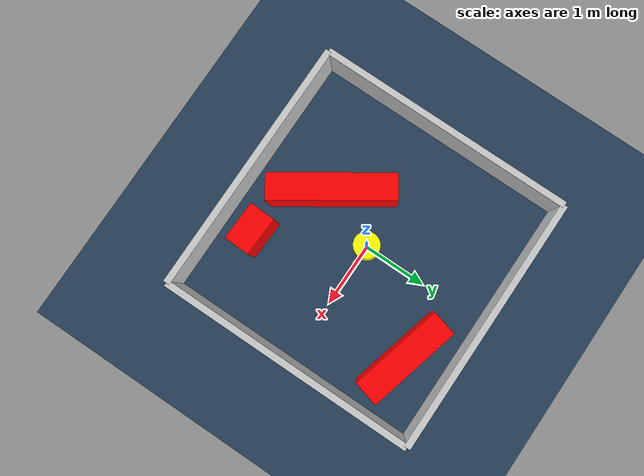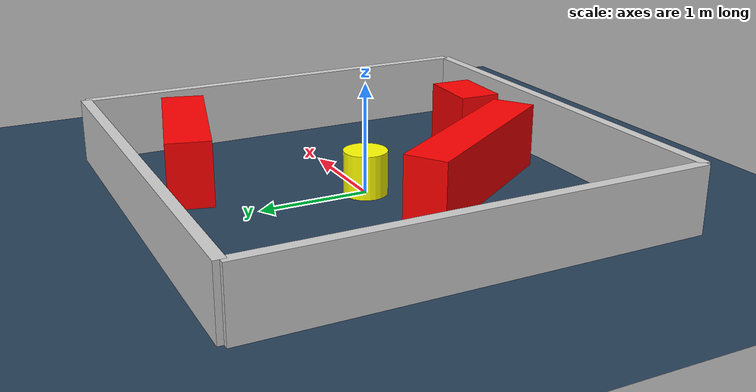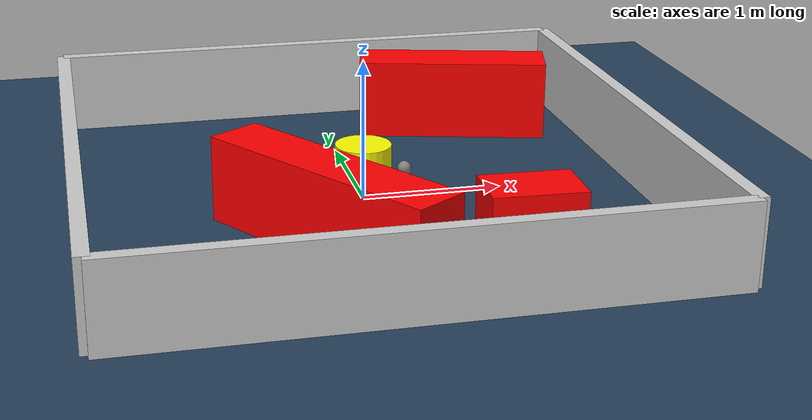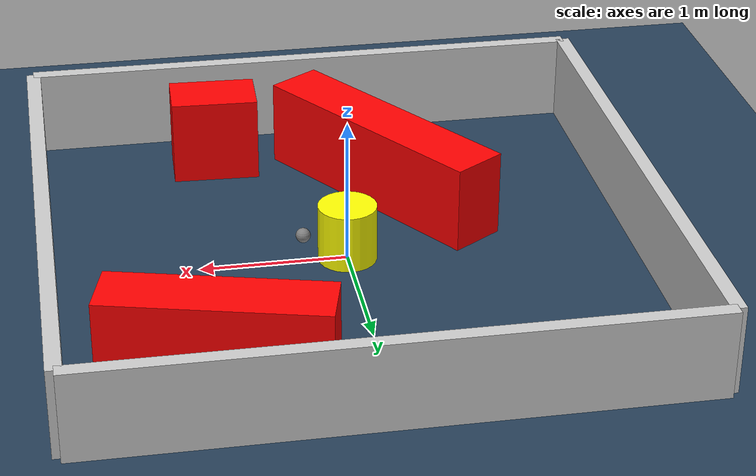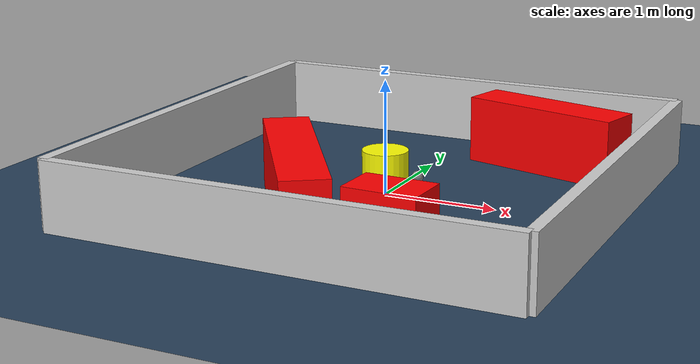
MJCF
<?xml version="1.0" ?>
<mujoco model="generated_environment">
  <option timestep="0.01" integrator="RK4" cone="elliptic"/>
  <default>
    <geom density="1"/>
  </default>
  <asset>
    <texture builtin="gradient" height="3072" rgb1="0.3 0.5 0.7" rgb2="0 0 0" type="skybox" width="512"/>
    <texture builtin="checker" height="300" mark="edge" markrgb="0.8 0.8 0.8" name="groundplane" rgb1="0.2 0.3 0.4" rgb2="0.1 0.2 0.3" type="2d" width="300"/>
    <material name="groundplane" reflectance="0.2" texrepeat="5 5" texture="groundplane" texuniform="true"/>
    <material name="robot" rgba="0.0 1.0 0.0 1"/>
  </asset>
  <worldbody>
    <light dir="0 0 -1" directional="true" pos="0 0 1.5"/>
    <geom condim="4" friction="1.0 0.005 0.001" material="groundplane" name="floor" size="0 0 0.05" type="plane"/>
    <body name="walls">
      <geom name="wall_1" condim="4" pos="-2.0 0.0 0.3" rgba="0.800000011920929 0.800000011920929 0.800000011920929 1.0" size="0.05 2.0 0.3" type="box"/>
      <geom name="wall_2" condim="4" pos="2.0 0.0 0.3" rgba="0.800000011920929 0.800000011920929 0.800000011920929 1.0" size="0.05 2.0 0.3" type="box"/>
      <geom name="wall_3" condim="4" pos="0.0 -2.0 0.3" rgba="0.800000011920929 0.800000011920929 0.800000011920929 1.0" size="2.0 0.05 0.3" type="box"/>
      <geom name="wall_4" condim="4" pos="0.0 2.0 0.3" rgba="0.800000011920929 0.800000011920929 0.800000011920929 1.0" size="2.0 0.05 0.3" type="box"/>
    </body>
    <body name="robot">
      <joint name="joint_x" type="slide" pos="0 0 0" axis="1 0 0"/>
      <joint name="joint_y" type="slide" pos="0 0 0" axis="0 1 0"/>
      <geom name="robot" type="sphere" pos="0.3 0.0 0.2" size="0.05" mass="5." friction="1.0 0.005 0.0001" condim="4" rgba="0.5 0.5 0.5 1.0"/>
      <site name="sensor_ball"/>
    </body>
    <body name="obstacle_movable_1">
      <geom name="obstacle_movable_1" condim="4" pos="0.0 0.0 0.2" euler="0 0 0.0" friction="1.0 0.005 0.001" rgba="1.0 1.0 0.0 1.0" size="0.2 0.2 0.0" type="cylinder" mass="0.1"/>
      <joint type="free"/>
    </body>
    <body name="obstacle_2_static">
      <geom name="obstacle_2_static" condim="4" pos="1.0129511528247472 1.319116684663123 0.3" euler="0 0 165.3878922890685" friction="1.0 0.005 0.001" rgba="1 0 0 1" size="0.7278942729961031 0.2 0.3" type="box"/>
    </body>
    <body name="obstacle_3_static">
      <geom name="obstacle_3_static" condim="4" pos="-0.39811919971121046 -0.8590343408308702 0.3" euler="0 0 303.6534690414545" friction="1.0 0.005 0.001" rgba="1 0 0 1" size="0.9402560659492218 0.2 0.3" type="box"/>
    </body>
    <body name="obstacle_4_static">
      <geom name="obstacle_4_static" condim="4" pos="0.7352837990570034 -1.4782877827252578 0.3" euler="0 0 357.7986037427746" friction="1.0 0.005 0.001" rgba="1 0 0 1" size="0.30438939826918227 0.2 0.3" type="box"/>
    </body>
  </worldbody>
  <actuator>
    <motor name="actuator_x" joint="joint_x" gear="1" ctrlrange="-1 1"/>
    <motor name="actuator_y" joint="joint_y" gear="1" ctrlrange="-1 1"/>
  </actuator>
</mujoco>
